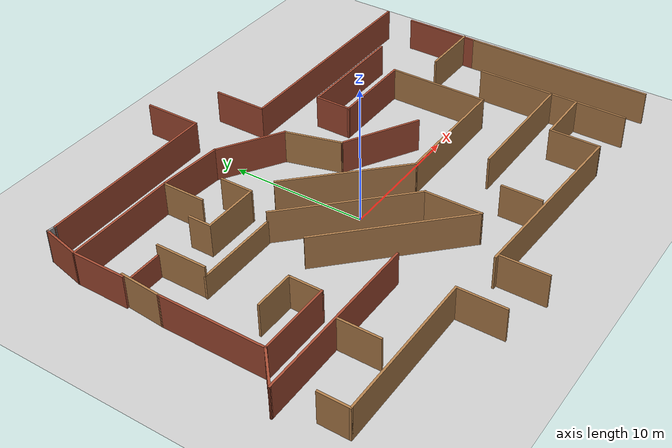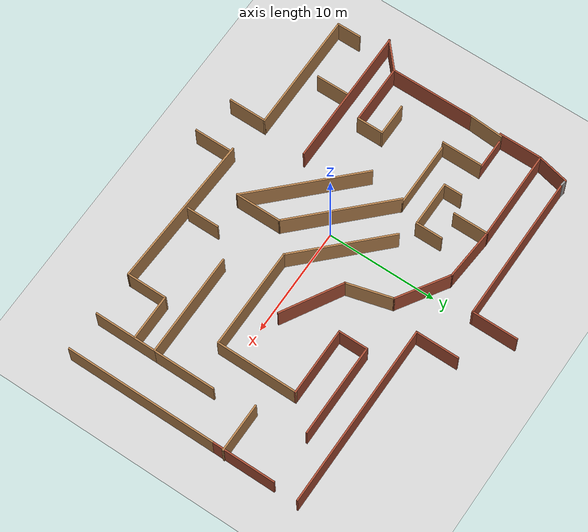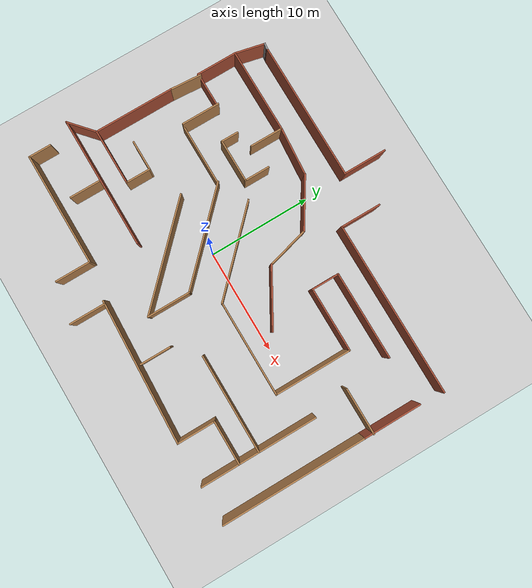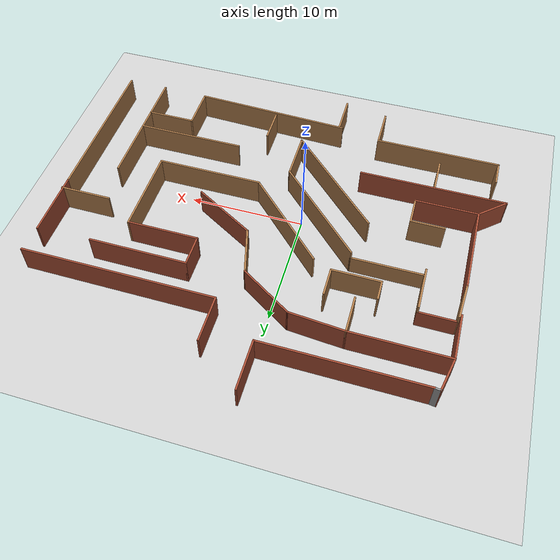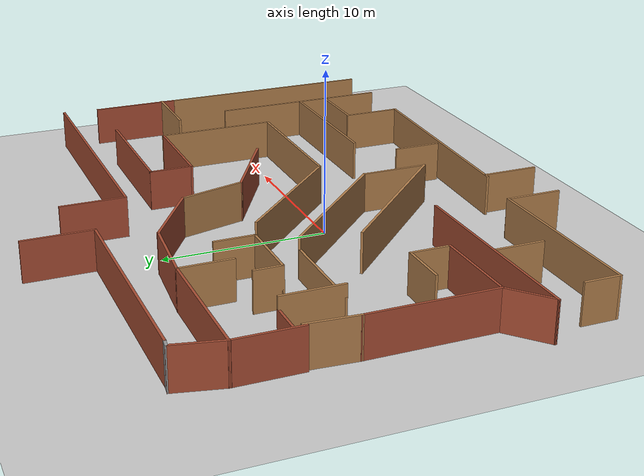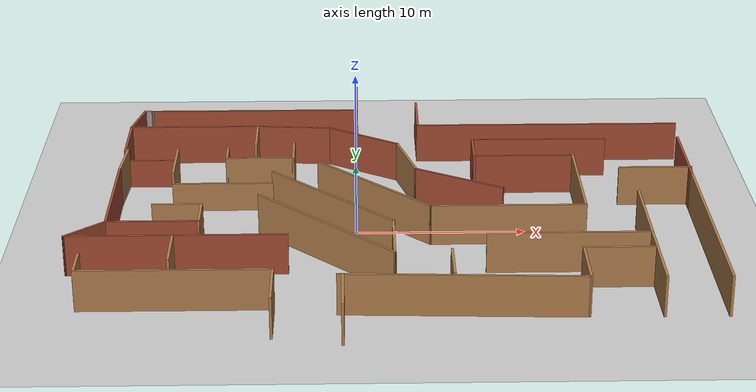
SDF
<?xml version="1.0" ?>
<sdf version="1.5">
  <!-- We use a custom world for the robot so that the camera angle is launched correctly -->
  <world name="diff_drive_world">

    <!-- Add a ground plane -->
    <include>
        <uri>model://ground_plane</uri>
        <material>
            <script>
                <uri>file://media/materials/scripts/gazebo.material</uri>
            </script>
        </material>
    </include>

    <!-- Global light source -->
    <include>
      <uri>model://sun</uri>
    </include>

    <include>
      <uri>model://Labyrinth2</uri>
      <pose>2 2 0 0 0 0</pose>
    </include>

    <!-- Human -->

    <!-- Set up the solver used for simulation -->
    <physics name="ode_70iters" type="ode">
      <real_time_update_rate>1500</real_time_update_rate>
      <ode>
        <solver>
          <type>quick</type>
          <iters>70</iters>
        </solver>
      </ode>
    </physics>

  </world>
</sdf>

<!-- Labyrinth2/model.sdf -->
<sdf version='1.7'>
  <model name='Labyrinth2'>
    <pose>14.88 -6.67463 0 0 -0 0</pose>
    <link name='Wall_0'>
      <collision name='Wall_0_Collision'>
        <geometry>
          <box>
            <size>3.25 0.15 2.5</size>
          </box>
        </geometry>
        <pose>0 0 0.5 0 -0 0</pose>
      </collision>
      <visual name='Wall_0_Visual'>
        <pose>0 0 0.5 0 -0 0</pose>
        <geometry>
          <box>
            <size>3.25 0.15 2.5</size>
          </box>
        </geometry>
        <material>
          <script>
            <uri>file://media/materials/scripts/gazebo.material</uri>
            <name>Gazebo/Bricks</name>
          </script>
          <ambient>1 1 1 1</ambient>
        </material>
        <meta>
          <layer>0</layer>
        </meta>
      </visual>
      <pose>-14.6765 5.20769 0 0 -0 0</pose>
    </link>
    <link name='Wall_100'>
      <collision name='Wall_100_Collision'>
        <geometry>
          <box>
            <size>8.25 0.15 2.5</size>
          </box>
        </geometry>
        <pose>0 0 1.25 0 -0 0</pose>
      </collision>
      <visual name='Wall_100_Visual'>
        <pose>0 0 1.25 0 -0 0</pose>
        <geometry>
          <box>
            <size>8.25 0.15 2.5</size>
          </box>
        </geometry>
        <material>
          <script>
            <uri>file://media/materials/scripts/gazebo.material</uri>
            <name>Gazebo/Bricks</name>
          </script>
          <ambient>1 1 1 1</ambient>
        </material>
        <meta>
          <layer>0</layer>
        </meta>
      </visual>
      <pose>-12.337 8.90344 0 0 -0 0</pose>
    </link>
    <link name='Wall_102'>
      <collision name='Wall_102_Collision'>
        <geometry>
          <box>
            <size>4.79271 0.15 2.5</size>
          </box>
        </geometry>
        <pose>0 0 1.25 0 -0 0</pose>
      </collision>
      <visual name='Wall_102_Visual'>
        <pose>0 0 1.25 0 -0 0</pose>
        <geometry>
          <box>
            <size>4.79271 0.15 2.5</size>
          </box>
        </geometry>
        <material>
          <script>
            <uri>file://media/materials/scripts/gazebo.material</uri>
            <name>Gazebo/Bricks</name>
          </script>
          <ambient>1 1 1 1</ambient>
        </material>
        <meta>
          <layer>0</layer>
        </meta>
      </visual>
      <pose>-5.97284 8.72026 0 0 -0 3.0626</pose>
    </link>
    <link name='Wall_104'>
      <collision name='Wall_104_Collision'>
        <geometry>
          <box>
            <size>4.25 0.15 2.5</size>
          </box>
        </geometry>
        <pose>0 0 1.25 0 -0 0</pose>
      </collision>
      <visual name='Wall_104_Visual'>
        <pose>0 0 1.25 0 -0 0</pose>
        <geometry>
          <box>
            <size>4.25 0.15 2.5</size>
          </box>
        </geometry>
        <material>
          <script>
            <uri>file://media/materials/scripts/gazebo.material</uri>
            <name>Gazebo/Bricks</name>
          </script>
          <ambient>1 1 1 1</ambient>
        </material>
        <meta>
          <layer>0</layer>
        </meta>
      </visual>
      <pose>-1.92948 13.6614 0 0 -0 -1.5708</pose>
    </link>
    <link name='Wall_105'>
      <collision name='Wall_105_Collision'>
        <geometry>
          <box>
            <size>13.5 0.15 2.5</size>
          </box>
        </geometry>
        <pose>0 0 1.25 0 -0 0</pose>
      </collision>
      <visual name='Wall_105_Visual'>
        <pose>0 0 1.25 0 -0 0</pose>
        <geometry>
          <box>
            <size>13.5 0.15 2.5</size>
          </box>
        </geometry>
        <material>
          <script>
            <uri>file://media/materials/scripts/gazebo.material</uri>
            <name>Gazebo/Bricks</name>
          </script>
          <ambient>1 1 1 1</ambient>
        </material>
        <meta>
          <layer>0</layer>
        </meta>
      </visual>
      <pose>-8.60448 11.6114 0 0 -0 3.14159</pose>
    </link>
    <link name='Wall_107'>
      <collision name='Wall_107_Collision'>
        <geometry>
          <box>
            <size>11 0.15 2.5</size>
          </box>
        </geometry>
        <pose>0 0 1.25 0 -0 0</pose>
      </collision>
      <visual name='Wall_107_Visual'>
        <pose>0 0 1.25 0 -0 0</pose>
        <geometry>
          <box>
            <size>11 0.15 2.5</size>
          </box>
        </geometry>
        <material>
          <script>
            <uri>file://media/materials/scripts/gazebo.material</uri>
            <name>Gazebo/Wood</name>
          </script>
          <ambient>1 1 1 1</ambient>
        </material>
        <meta>
          <layer>0</layer>
        </meta>
      </visual>
      <pose>-12.0381 -11.6128 0 0 -0 0</pose>
    </link>
    <link name='Wall_108'>
      <collision name='Wall_108_Collision'>
        <geometry>
          <box>
            <size>3.5 0.15 2.5</size>
          </box>
        </geometry>
        <pose>0 0 1.25 0 -0 0</pose>
      </collision>
      <visual name='Wall_108_Visual'>
        <pose>0 0 1.25 0 -0 0</pose>
        <geometry>
          <box>
            <size>3.5 0.15 2.5</size>
          </box>
        </geometry>
        <material>
          <script>
            <uri>file://media/materials/scripts/gazebo.material</uri>
            <name>Gazebo/Wood</name>
          </script>
          <ambient>1 1 1 1</ambient>
        </material>
        <meta>
          <layer>0</layer>
        </meta>
      </visual>
      <pose>-6.61313 -13.2878 0 0 -0 -1.5708</pose>
    </link>
    <link name='Wall_110'>
      <collision name='Wall_110_Collision'>
        <geometry>
          <box>
            <size>3.5 0.15 2.5</size>
          </box>
        </geometry>
        <pose>0 0 1.25 0 -0 0</pose>
      </collision>
      <visual name='Wall_110_Visual'>
        <pose>0 0 1.25 0 -0 0</pose>
        <geometry>
          <box>
            <size>3.5 0.15 2.5</size>
          </box>
        </geometry>
        <material>
          <script>
            <uri>file://media/materials/scripts/gazebo.material</uri>
            <name>Gazebo/Wood</name>
          </script>
          <ambient>1 1 1 1</ambient>
        </material>
        <meta>
          <layer>0</layer>
        </meta>
      </visual>
      <pose>-2.77167 -14.0364 0 0 -0 -1.5708</pose>
    </link>
    <link name='Wall_115'>
      <collision name='Wall_115_Collision'>
        <geometry>
          <box>
            <size>13.8885 0.15 2.5</size>
          </box>
        </geometry>
        <pose>0 0 1.25 0 -0 0</pose>
      </collision>
      <visual name='Wall_115_Visual'>
        <pose>0 0 1.25 0 -0 0</pose>
        <geometry>
          <box>
            <size>13.8885 0.15 2.5</size>
          </box>
        </geometry>
        <material>
          <script>
            <uri>file://media/materials/scripts/gazebo.material</uri>
            <name>Gazebo/Wood</name>
          </script>
          <ambient>1 1 1 1</ambient>
        </material>
        <meta>
          <layer>0</layer>
        </meta>
      </visual>
      <pose>3.81966 -12.5515 0 0 -0 -0.039063</pose>
    </link>
    <link name='Wall_117'>
      <collision name='Wall_117_Collision'>
        <geometry>
          <box>
            <size>5.75 0.15 2.5</size>
          </box>
        </geometry>
        <pose>0 0 1.25 0 -0 0</pose>
      </collision>
      <visual name='Wall_117_Visual'>
        <pose>0 0 1.25 0 -0 0</pose>
        <geometry>
          <box>
            <size>5.75 0.15 2.5</size>
          </box>
        </geometry>
        <material>
          <script>
            <uri>file://media/materials/scripts/gazebo.material</uri>
            <name>Gazebo/Wood</name>
          </script>
          <ambient>1 1 1 1</ambient>
        </material>
        <meta>
          <layer>0</layer>
        </meta>
      </visual>
      <pose>14.801 -10.0842 0 0 -0 -1.5708</pose>
    </link>
    <link name='Wall_119'>
      <collision name='Wall_119_Collision'>
        <geometry>
          <box>
            <size>4.25 0.15 2.5</size>
          </box>
        </geometry>
        <pose>0 0 1.25 0 -0 0</pose>
      </collision>
      <visual name='Wall_119_Visual'>
        <pose>0 0 1.25 0 -0 0</pose>
        <geometry>
          <box>
            <size>4.25 0.15 2.5</size>
          </box>
        </geometry>
        <material>
          <script>
            <uri>file://media/materials/scripts/gazebo.material</uri>
            <name>Gazebo/Wood</name>
          </script>
          <ambient>1 1 1 1</ambient>
        </material>
        <meta>
          <layer>0</layer>
        </meta>
      </visual>
      <pose>12.7337 -9.21982 0 0 -0 0</pose>
    </link>
    <link name='Wall_121'>
      <collision name='Wall_121_Collision'>
        <geometry>
          <box>
            <size>2.98653 0.15 2.5</size>
          </box>
        </geometry>
        <pose>0 0 1.25 0 -0 0</pose>
      </collision>
      <visual name='Wall_121_Visual'>
        <pose>0 0 1.25 0 -0 0</pose>
        <geometry>
          <box>
            <size>2.98653 0.15 2.5</size>
          </box>
        </geometry>
        <material>
          <script>
            <uri>file://media/materials/scripts/gazebo.material</uri>
            <name>Gazebo/Bricks</name>
          </script>
          <ambient>1 1 1 1</ambient>
        </material>
        <meta>
          <layer>0</layer>
        </meta>
      </visual>
      <pose>-16.0788 10.2878 0 0 -0 -1.78979</pose>
    </link>
    <link name='Wall_123'>
      <collision name='Wall_123_Collision'>
        <geometry>
          <box>
            <size>0.644994 0.15 2.5</size>
          </box>
        </geometry>
        <pose>0 0 1.25 0 -0 0</pose>
      </collision>
      <visual name='Wall_123_Visual'>
        <pose>0 0 1.25 0 -0 0</pose>
        <geometry>
          <box>
            <size>0.644994 0.15 2.5</size>
          </box>
        </geometry>
        <material>
          <script>
            <uri>file://media/materials/scripts/gazebo.material</uri>
            <name>Gazebo/Grey</name>
          </script>
          <ambient>1 1 1 1</ambient>
        </material>
        <meta>
          <layer>0</layer>
        </meta>
      </visual>
      <pose>-15.5251 11.6418 0 0 -0 3.01846</pose>
    </link>
    <link name='Wall_126'>
      <collision name='Wall_126_Collision'>
        <geometry>
          <box>
            <size>2.25 0.15 2.5</size>
          </box>
        </geometry>
        <pose>0 0 1.25 0 -0 0</pose>
      </collision>
      <visual name='Wall_126_Visual'>
        <pose>0 0 1.25 0 -0 0</pose>
        <geometry>
          <box>
            <size>2.25 0.15 2.5</size>
          </box>
        </geometry>
        <material>
          <script>
            <uri>file://media/materials/scripts/gazebo.material</uri>
            <name>Gazebo/Wood</name>
          </script>
          <ambient>1 1 1 1</ambient>
        </material>
        <meta>
          <layer>0</layer>
        </meta>
      </visual>
      <pose>-17.4631 -10.5628 0 0 -0 1.5708</pose>
    </link>
    <link name='Wall_128'>
      <collision name='Wall_128_Collision'>
        <geometry>
          <box>
            <size>2.99043 0.15 2.5</size>
          </box>
        </geometry>
        <pose>0 0 1.25 0 -0 0</pose>
      </collision>
      <visual name='Wall_128_Visual'>
        <pose>0 0 1.25 0 -0 0</pose>
        <geometry>
          <box>
            <size>2.99043 0.15 2.5</size>
          </box>
        </geometry>
        <material>
          <script>
            <uri>file://media/materials/scripts/gazebo.material</uri>
            <name>Gazebo/Bricks</name>
          </script>
          <ambient>1 1 1 1</ambient>
        </material>
        <meta>
          <layer>0</layer>
        </meta>
      </visual>
      <pose>-17.4925 -6.30103 0 0 -0 -2.4176</pose>
    </link>
    <link name='Wall_130'>
      <collision name='Wall_130_Collision'>
        <geometry>
          <box>
            <size>4 0.15 2.5</size>
          </box>
        </geometry>
        <pose>0 0 1.25 0 -0 0</pose>
      </collision>
      <visual name='Wall_130_Visual'>
        <pose>0 0 1.25 0 -0 0</pose>
        <geometry>
          <box>
            <size>4 0.15 2.5</size>
          </box>
        </geometry>
        <material>
          <script>
            <uri>file://media/materials/scripts/gazebo.material</uri>
            <name>Gazebo/Bricks</name>
          </script>
          <ambient>1 1 1 1</ambient>
        </material>
        <meta>
          <layer>0</layer>
        </meta>
      </visual>
      <pose>-16.387 6.97844 0 0 -0 -1.5708</pose>
    </link>
    <link name='Wall_132'>
      <collision name='Wall_132_Collision'>
        <geometry>
          <box>
            <size>4.5 0.15 2.5</size>
          </box>
        </geometry>
        <pose>0 0 1.25 0 -0 0</pose>
      </collision>
      <visual name='Wall_132_Visual'>
        <pose>0 0 1.25 0 -0 0</pose>
        <geometry>
          <box>
            <size>4.5 0.15 2.5</size>
          </box>
        </geometry>
        <material>
          <script>
            <uri>file://media/materials/scripts/gazebo.material</uri>
            <name>Gazebo/Wood</name>
          </script>
          <ambient>1 1 1 1</ambient>
        </material>
        <meta>
          <layer>0</layer>
        </meta>
      </visual>
      <pose>16.3087 1.8733 0 0 -0 3.14159</pose>
    </link>
    <link name='Wall_135'>
      <collision name='Wall_135_Collision'>
        <geometry>
          <box>
            <size>3.25 0.15 2.5</size>
          </box>
        </geometry>
        <pose>0 0 1.25 0 -0 0</pose>
      </collision>
      <visual name='Wall_135_Visual'>
        <pose>0 0 1.25 0 -0 0</pose>
        <geometry>
          <box>
            <size>3.25 0.15 2.5</size>
          </box>
        </geometry>
        <material>
          <script>
            <uri>file://media/materials/scripts/gazebo.material</uri>
            <name>Gazebo/Wood</name>
          </script>
          <ambient>1 1 1 1</ambient>
        </material>
        <meta>
          <layer>0</layer>
        </meta>
      </visual>
      <pose>-8.28696 7.35344 0 0 -0 -1.5708</pose>
    </link>
    <link name='Wall_137'>
      <collision name='Wall_137_Collision'>
        <geometry>
          <box>
            <size>3 0.15 2.5</size>
          </box>
        </geometry>
        <pose>0 0 1.25 0 -0 0</pose>
      </collision>
      <visual name='Wall_137_Visual'>
        <pose>0 0 1.25 0 -0 0</pose>
        <geometry>
          <box>
            <size>3 0.15 2.5</size>
          </box>
        </geometry>
        <material>
          <script>
            <uri>file://media/materials/scripts/gazebo.material</uri>
            <name>Gazebo/Wood</name>
          </script>
          <ambient>1 1 1 1</ambient>
        </material>
        <meta>
          <layer>0</layer>
        </meta>
      </visual>
      <pose>3.32146 -10.7794 0 0 -0 1.5708</pose>
    </link>
    <link name='Wall_33'>
      <collision name='Wall_33_Collision'>
        <geometry>
          <box>
            <size>3.75 0.15 2.5</size>
          </box>
        </geometry>
        <pose>0 0 1.25 0 -0 0</pose>
      </collision>
      <visual name='Wall_33_Visual'>
        <pose>0 0 1.25 0 -0 0</pose>
        <geometry>
          <box>
            <size>3.75 0.15 2.5</size>
          </box>
        </geometry>
        <material>
          <script>
            <uri>file://media/materials/scripts/gazebo.material</uri>
            <name>Gazebo/Wood</name>
          </script>
          <ambient>1 1 1 1</ambient>
        </material>
        <meta>
          <layer>0</layer>
        </meta>
      </visual>
      <pose>-13.1267 3.40766 0 0 -0 -1.57093</pose>
    </link>
    <link name='Wall_34'>
      <collision name='Wall_34_Collision'>
        <geometry>
          <box>
            <size>6.25 0.15 2.5</size>
          </box>
        </geometry>
        <pose>0 0 0.5 0 -0 0</pose>
      </collision>
      <visual name='Wall_34_Visual'>
        <pose>0 0 0.5 0 -0 0</pose>
        <geometry>
          <box>
            <size>6.25 0.15 2.5</size>
          </box>
        </geometry>
        <material>
          <script>
            <uri>file://media/materials/scripts/gazebo.material</uri>
            <name>Gazebo/Wood</name>
          </script>
          <ambient>1 1 1 1</ambient>
        </material>
        <meta>
          <layer>0</layer>
        </meta>
      </visual>
      <pose>-10.077 1.60763 0 0 -0 0</pose>
    </link>
    <link name='Wall_35'>
      <collision name='Wall_35_Collision'>
        <geometry>
          <box>
            <size>10.25 0.15 2.5</size>
          </box>
        </geometry>
        <pose>0 0 1.25 0 -0 0</pose>
      </collision>
      <visual name='Wall_35_Visual'>
        <pose>0 0 1.25 0 -0 0</pose>
        <geometry>
          <box>
            <size>10.25 0.15 2.5</size>
          </box>
        </geometry>
        <material>
          <script>
            <uri>file://media/materials/scripts/gazebo.material</uri>
            <name>Gazebo/Wood</name>
          </script>
          <ambient>1 1 1 1</ambient>
        </material>
        <meta>
          <layer>0</layer>
        </meta>
      </visual>
      <pose>-3.45586 -1.96323 0 0 -0 -0.785361</pose>
    </link>
    <link name='Wall_49'>
      <collision name='Wall_49_Collision'>
        <geometry>
          <box>
            <size>1.75 0.15 2.5</size>
          </box>
        </geometry>
        <pose>0 0 1.25 0 -0 0</pose>
      </collision>
      <visual name='Wall_49_Visual'>
        <pose>0 0 1.25 0 -0 0</pose>
        <geometry>
          <box>
            <size>1.75 0.15 2.5</size>
          </box>
        </geometry>
        <material>
          <script>
            <uri>file://media/materials/scripts/gazebo.material</uri>
            <name>Gazebo/Wood</name>
          </script>
          <ambient>1 1 1 1</ambient>
        </material>
        <meta>
          <layer>0</layer>
        </meta>
      </visual>
      <pose>-9.98534 4.55028 0 0 -0 -1.5708</pose>
    </link>
    <link name='Wall_50'>
      <collision name='Wall_50_Collision'>
        <geometry>
          <box>
            <size>4.25 0.15 2.5</size>
          </box>
        </geometry>
        <pose>0 0 1.25 0 -0 0</pose>
      </collision>
      <visual name='Wall_50_Visual'>
        <pose>0 0 1.25 0 -0 0</pose>
        <geometry>
          <box>
            <size>4.25 0.15 2.5</size>
          </box>
        </geometry>
        <material>
          <script>
            <uri>file://media/materials/scripts/gazebo.material</uri>
            <name>Gazebo/Wood</name>
          </script>
          <ambient>1 1 1 1</ambient>
        </material>
        <meta>
          <layer>0</layer>
        </meta>
      </visual>
      <pose>-7.93534 3.75028 0 0 -0 0</pose>
    </link>
    <link name='Wall_51'>
      <collision name='Wall_51_Collision'>
        <geometry>
          <box>
            <size>2.5 0.15 2.5</size>
          </box>
        </geometry>
        <pose>0 0 1.25 0 -0 0</pose>
      </collision>
      <visual name='Wall_51_Visual'>
        <pose>0 0 1.25 0 -0 0</pose>
        <geometry>
          <box>
            <size>2.5 0.15 2.5</size>
          </box>
        </geometry>
        <material>
          <script>
            <uri>file://media/materials/scripts/gazebo.material</uri>
            <name>Gazebo/Wood</name>
          </script>
          <ambient>1 1 1 1</ambient>
        </material>
        <meta>
          <layer>0</layer>
        </meta>
      </visual>
      <pose>-5.88534 4.92528 0 0 -0 1.5708</pose>
    </link>
    <link name='Wall_53'>
      <collision name='Wall_53_Collision'>
        <geometry>
          <box>
            <size>9.5 0.15 2.5</size>
          </box>
        </geometry>
        <pose>0 0 1.25 0 -0 0</pose>
      </collision>
      <visual name='Wall_53_Visual'>
        <pose>0 0 1.25 0 -0 0</pose>
        <geometry>
          <box>
            <size>9.5 0.15 2.5</size>
          </box>
        </geometry>
        <material>
          <script>
            <uri>file://media/materials/scripts/gazebo.material</uri>
            <name>Gazebo/Wood</name>
          </script>
          <ambient>1 1 1 1</ambient>
        </material>
        <meta>
          <layer>0</layer>
        </meta>
      </visual>
      <pose>-0.957524 -0.231975 0 0 -0 -0.785398</pose>
    </link>
    <link name='Wall_54'>
      <collision name='Wall_54_Collision'>
        <geometry>
          <box>
            <size>9.25 0.15 2.5</size>
          </box>
        </geometry>
        <pose>0 0 1.25 0 -0 0</pose>
      </collision>
      <visual name='Wall_54_Visual'>
        <pose>0 0 1.25 0 -0 0</pose>
        <geometry>
          <box>
            <size>9.25 0.15 2.5</size>
          </box>
        </geometry>
        <material>
          <script>
            <uri>file://media/materials/scripts/gazebo.material</uri>
            <name>Gazebo/Wood</name>
          </script>
          <ambient>1 1 1 1</ambient>
        </material>
        <meta>
          <layer>0</layer>
        </meta>
      </visual>
      <pose>6.8982 -3.5377 0 0 -0 0</pose>
    </link>
    <link name='Wall_55'>
      <collision name='Wall_55_Collision'>
        <geometry>
          <box>
            <size>7.5 0.15 2.5</size>
          </box>
        </geometry>
        <pose>0 0 1.25 0 -0 0</pose>
      </collision>
      <visual name='Wall_55_Visual'>
        <pose>0 0 1.25 0 -0 0</pose>
        <geometry>
          <box>
            <size>7.5 0.15 2.5</size>
          </box>
        </geometry>
        <material>
          <script>
            <uri>file://media/materials/scripts/gazebo.material</uri>
            <name>Gazebo/Wood</name>
          </script>
          <ambient>1 1 1 1</ambient>
        </material>
        <meta>
          <layer>0</layer>
        </meta>
      </visual>
      <pose>11.4482 0.137301 0 0 -0 1.5708</pose>
    </link>
    <link name='Wall_56'>
      <collision name='Wall_56_Collision'>
        <geometry>
          <box>
            <size>6.25 0.15 2.5</size>
          </box>
        </geometry>
        <pose>0 0 1.25 0 -0 0</pose>
      </collision>
      <visual name='Wall_56_Visual'>
        <pose>0 0 1.25 0 -0 0</pose>
        <geometry>
          <box>
            <size>6.25 0.15 2.5</size>
          </box>
        </geometry>
        <material>
          <script>
            <uri>file://media/materials/scripts/gazebo.material</uri>
            <name>Gazebo/Bricks</name>
          </script>
          <ambient>1 1 1 1</ambient>
        </material>
        <meta>
          <layer>0</layer>
        </meta>
      </visual>
      <pose>8.3982 3.8123 0 0 -0 3.14159</pose>
    </link>
    <link name='Wall_57'>
      <collision name='Wall_57_Collision'>
        <geometry>
          <box>
            <size>2.75 0.15 2.5</size>
          </box>
        </geometry>
        <pose>0 0 1.25 0 -0 0</pose>
      </collision>
      <visual name='Wall_57_Visual'>
        <pose>0 0 1.25 0 -0 0</pose>
        <geometry>
          <box>
            <size>2.75 0.15 2.5</size>
          </box>
        </geometry>
        <material>
          <script>
            <uri>file://media/materials/scripts/gazebo.material</uri>
            <name>Gazebo/Bricks</name>
          </script>
          <ambient>1 1 1 1</ambient>
        </material>
        <meta>
          <layer>0</layer>
        </meta>
      </visual>
      <pose>5.3482 5.1123 0 0 -0 1.5708</pose>
    </link>
    <link name='Wall_60'>
      <collision name='Wall_60_Collision'>
        <geometry>
          <box>
            <size>4.25 0.15 2.5</size>
          </box>
        </geometry>
        <pose>0 0 1.25 0 -0 0</pose>
      </collision>
      <visual name='Wall_60_Visual'>
        <pose>0 0 1.25 0 -0 0</pose>
        <geometry>
          <box>
            <size>4.25 0.15 2.5</size>
          </box>
        </geometry>
        <material>
          <script>
            <uri>file://media/materials/scripts/gazebo.material</uri>
            <name>Gazebo/Wood</name>
          </script>
          <ambient>1 1 1 1</ambient>
        </material>
        <meta>
          <layer>0</layer>
        </meta>
      </visual>
      <pose>1.12803 3.86236 0 0 -0 -1.309</pose>
    </link>
    <link name='Wall_61'>
      <collision name='Wall_61_Collision'>
        <geometry>
          <box>
            <size>6 0.15 2.5</size>
          </box>
        </geometry>
        <pose>0 0 1.25 0 -0 0</pose>
      </collision>
      <visual name='Wall_61_Visual'>
        <pose>0 0 1.25 0 -0 0</pose>
        <geometry>
          <box>
            <size>6 0.15 2.5</size>
          </box>
        </geometry>
        <material>
          <script>
            <uri>file://media/materials/scripts/gazebo.material</uri>
            <name>Gazebo/Bricks</name>
          </script>
          <ambient>1 1 1 1</ambient>
        </material>
        <meta>
          <layer>0</layer>
        </meta>
      </visual>
      <pose>4.19174 0.419708 0 0 -0 -0.523599</pose>
    </link>
    <link name='Wall_63'>
      <collision name='Wall_63_Collision'>
        <geometry>
          <box>
            <size>4.25 0.15 2.5</size>
          </box>
        </geometry>
        <pose>0 0 1.25 0 -0 0</pose>
      </collision>
      <visual name='Wall_63_Visual'>
        <pose>0 0 1.25 0 -0 0</pose>
        <geometry>
          <box>
            <size>4.25 0.15 2.5</size>
          </box>
        </geometry>
        <material>
          <script>
            <uri>file://media/materials/scripts/gazebo.material</uri>
            <name>Gazebo/Wood</name>
          </script>
          <ambient>1 1 1 1</ambient>
        </material>
        <meta>
          <layer>0</layer>
        </meta>
      </visual>
      <pose>0.115266 -7.58409 0 0 -0 -1.5708</pose>
    </link>
    <link name='Wall_64'>
      <collision name='Wall_64_Collision'>
        <geometry>
          <box>
            <size>11.25 0.15 2.5</size>
          </box>
        </geometry>
        <pose>0 0 1.25 0 -0 0</pose>
      </collision>
      <visual name='Wall_64_Visual'>
        <pose>0 0 1.25 0 -0 0</pose>
        <geometry>
          <box>
            <size>11.25 0.15 2.5</size>
          </box>
        </geometry>
        <material>
          <script>
            <uri>file://media/materials/scripts/gazebo.material</uri>
            <name>Gazebo/Wood</name>
          </script>
          <ambient>1 1 1 1</ambient>
        </material>
        <meta>
          <layer>0</layer>
        </meta>
      </visual>
      <pose>-3.80918 -5.70965 0 0 -0 2.35619</pose>
    </link>
    <link name='Wall_66'>
      <collision name='Wall_66_Collision'>
        <geometry>
          <box>
            <size>7.75 0.15 2.5</size>
          </box>
        </geometry>
        <pose>0 0 1.25 0 -0 0</pose>
      </collision>
      <visual name='Wall_66_Visual'>
        <pose>0 0 1.25 0 -0 0</pose>
        <geometry>
          <box>
            <size>7.75 0.15 2.5</size>
          </box>
        </geometry>
        <material>
          <script>
            <uri>file://media/materials/scripts/gazebo.material</uri>
            <name>Gazebo/Bricks</name>
          </script>
          <ambient>1 1 1 1</ambient>
        </material>
        <meta>
          <layer>0</layer>
        </meta>
      </visual>
      <pose>-16.4286 -1.56031 0 0 -0 -1.5708</pose>
    </link>
    <link name='Wall_67'>
      <collision name='Wall_67_Collision'>
        <geometry>
          <box>
            <size>5.5 0.15 2.5</size>
          </box>
        </geometry>
        <pose>0 0 1.25 0 -0 0</pose>
      </collision>
      <visual name='Wall_67_Visual'>
        <pose>0 0 1.25 0 -0 0</pose>
        <geometry>
          <box>
            <size>5.5 0.15 2.5</size>
          </box>
        </geometry>
        <material>
          <script>
            <uri>file://media/materials/scripts/gazebo.material</uri>
            <name>Gazebo/Bricks</name>
          </script>
          <ambient>1 1 1 1</ambient>
        </material>
        <meta>
          <layer>0</layer>
        </meta>
      </visual>
      <pose>-13.7536 -5.36031 0 0 -0 0</pose>
    </link>
    <link name='Wall_68'>
      <collision name='Wall_68_Collision'>
        <geometry>
          <box>
            <size>2.5 0.15 2.5</size>
          </box>
        </geometry>
        <pose>0 0 1.25 0 -0 0</pose>
      </collision>
      <visual name='Wall_68_Visual'>
        <pose>0 0 1.25 0 -0 0</pose>
        <geometry>
          <box>
            <size>2.5 0.15 2.5</size>
          </box>
        </geometry>
        <material>
          <script>
            <uri>file://media/materials/scripts/gazebo.material</uri>
            <name>Gazebo/Wood</name>
          </script>
          <ambient>1 1 1 1</ambient>
        </material>
        <meta>
          <layer>0</layer>
        </meta>
      </visual>
      <pose>-11.0786 -4.18531 0 0 -0 1.5708</pose>
    </link>
    <link name='Wall_69'>
      <collision name='Wall_69_Collision'>
        <geometry>
          <box>
            <size>3 0.15 2.5</size>
          </box>
        </geometry>
        <pose>0 0 1.25 0 -0 0</pose>
      </collision>
      <visual name='Wall_69_Visual'>
        <pose>0 0 1.25 0 -0 0</pose>
        <geometry>
          <box>
            <size>3 0.15 2.5</size>
          </box>
        </geometry>
        <material>
          <script>
            <uri>file://media/materials/scripts/gazebo.material</uri>
            <name>Gazebo/Wood</name>
          </script>
          <ambient>1 1 1 1</ambient>
        </material>
        <meta>
          <layer>0</layer>
        </meta>
      </visual>
      <pose>-12.5036 -3.0103 0 0 -0 3.14159</pose>
    </link>
    <link name='Wall_71'>
      <collision name='Wall_71_Collision'>
        <geometry>
          <box>
            <size>12.75 0.15 2.5</size>
          </box>
        </geometry>
        <pose>0 0 1.25 0 -0 0</pose>
      </collision>
      <visual name='Wall_71_Visual'>
        <pose>0 0 1.25 0 -0 0</pose>
        <geometry>
          <box>
            <size>12.75 0.15 2.5</size>
          </box>
        </geometry>
        <material>
          <script>
            <uri>file://media/materials/scripts/gazebo.material</uri>
            <name>Gazebo/Bricks</name>
          </script>
          <ambient>1 1 1 1</ambient>
        </material>
        <meta>
          <layer>0</layer>
        </meta>
      </visual>
      <pose>-12.2565 -7.24175 0 0 -0 3.14159</pose>
    </link>
    <link name='Wall_76'>
      <collision name='Wall_76_Collision'>
        <geometry>
          <box>
            <size>14 0.15 2.5</size>
          </box>
        </geometry>
        <pose>0 0 1.25 0 -0 0</pose>
      </collision>
      <visual name='Wall_76_Visual'>
        <pose>0 0 1.25 0 -0 0</pose>
        <geometry>
          <box>
            <size>14 0.15 2.5</size>
          </box>
        </geometry>
        <material>
          <script>
            <uri>file://media/materials/scripts/gazebo.material</uri>
            <name>Gazebo/Wood</name>
          </script>
          <ambient>1 1 1 1</ambient>
        </material>
        <meta>
          <layer>0</layer>
        </meta>
      </visual>
      <pose>18.3994 -5.98839 0 0 -0 1.5708</pose>
    </link>
    <link name='Wall_78'>
      <collision name='Wall_78_Collision'>
        <geometry>
          <box>
            <size>5.75 0.15 2.5</size>
          </box>
        </geometry>
        <pose>0 0 1.25 0 -0 0</pose>
      </collision>
      <visual name='Wall_78_Visual'>
        <pose>0 0 1.25 0 -0 0</pose>
        <geometry>
          <box>
            <size>5.75 0.15 2.5</size>
          </box>
        </geometry>
        <material>
          <script>
            <uri>file://media/materials/scripts/gazebo.material</uri>
            <name>Gazebo/Wood</name>
          </script>
          <ambient>1 1 1 1</ambient>
        </material>
        <meta>
          <layer>0</layer>
        </meta>
      </visual>
      <pose>14.801 -4.48425 0 0 -0 -1.5708</pose>
    </link>
    <link name='Wall_79'>
      <collision name='Wall_79_Collision'>
        <geometry>
          <box>
            <size>9.5 0.15 2.5</size>
          </box>
        </geometry>
        <pose>0 0 1.25 0 -0 0</pose>
      </collision>
      <visual name='Wall_79_Visual'>
        <pose>0 0 1.25 0 -0 0</pose>
        <geometry>
          <box>
            <size>9.5 0.15 2.5</size>
          </box>
        </geometry>
        <material>
          <script>
            <uri>file://media/materials/scripts/gazebo.material</uri>
            <name>Gazebo/Wood</name>
          </script>
          <ambient>1 1 1 1</ambient>
        </material>
        <meta>
          <layer>0</layer>
        </meta>
      </visual>
      <pose>10.126 -7.28425 0 0 -0 3.14159</pose>
    </link>
    <link name='Wall_81'>
      <collision name='Wall_81_Collision'>
        <geometry>
          <box>
            <size>3 0.15 2.5</size>
          </box>
        </geometry>
        <pose>0 0 1.25 0 -0 0</pose>
      </collision>
      <visual name='Wall_81_Visual'>
        <pose>0 0 1.25 0 -0 0</pose>
        <geometry>
          <box>
            <size>3 0.15 2.5</size>
          </box>
        </geometry>
        <material>
          <script>
            <uri>file://media/materials/scripts/gazebo.material</uri>
            <name>Gazebo/Wood</name>
          </script>
          <ambient>1 1 1 1</ambient>
        </material>
        <meta>
          <layer>0</layer>
        </meta>
      </visual>
      <pose>-12.4296 -8.81739 0 0 -0 -1.5708</pose>
    </link>
    <link name='Wall_83'>
      <collision name='Wall_83_Collision'>
        <geometry>
          <box>
            <size>3.75 0.15 2.5</size>
          </box>
        </geometry>
        <pose>0 0 1.25 0 -0 0</pose>
      </collision>
      <visual name='Wall_83_Visual'>
        <pose>0 0 1.25 0 -0 0</pose>
        <geometry>
          <box>
            <size>3.75 0.15 2.5</size>
          </box>
        </geometry>
        <material>
          <script>
            <uri>file://media/materials/scripts/gazebo.material</uri>
            <name>Gazebo/Wood</name>
          </script>
          <ambient>1 1 1 1</ambient>
        </material>
        <meta>
          <layer>0</layer>
        </meta>
      </visual>
      <pose>10.6837 -11.0198 0 0 -0 1.5708</pose>
    </link>
    <link name='Wall_86'>
      <collision name='Wall_86_Collision'>
        <geometry>
          <box>
            <size>4 0.15 2.5</size>
          </box>
        </geometry>
        <pose>0 0 1.25 0 -0 0</pose>
      </collision>
      <visual name='Wall_86_Visual'>
        <pose>0 0 1.25 0 -0 0</pose>
        <geometry>
          <box>
            <size>4 0.15 2.5</size>
          </box>
        </geometry>
        <material>
          <script>
            <uri>file://media/materials/scripts/gazebo.material</uri>
            <name>Gazebo/Bricks</name>
          </script>
          <ambient>1 1 1 1</ambient>
        </material>
        <meta>
          <layer>0</layer>
        </meta>
      </visual>
      <pose>1.98739 10.8015 0 0 -0 -1.5708</pose>
    </link>
    <link name='Wall_87'>
      <collision name='Wall_87_Collision'>
        <geometry>
          <box>
            <size>16.75 0.15 2.5</size>
          </box>
        </geometry>
        <pose>0 0 1.25 0 -0 0</pose>
      </collision>
      <visual name='Wall_87_Visual'>
        <pose>0 0 1.25 0 -0 0</pose>
        <geometry>
          <box>
            <size>16.75 0.15 2.5</size>
          </box>
        </geometry>
        <material>
          <script>
            <uri>file://media/materials/scripts/gazebo.material</uri>
            <name>Gazebo/Bricks</name>
          </script>
          <ambient>1 1 1 1</ambient>
        </material>
        <meta>
          <layer>0</layer>
        </meta>
      </visual>
      <pose>10.2874 8.87649 0 0 -0 0</pose>
    </link>
    <link name='Wall_90'>
      <collision name='Wall_90_Collision'>
        <geometry>
          <box>
            <size>8.5 0.15 2.5</size>
          </box>
        </geometry>
        <pose>0 0 1.25 0 -0 0</pose>
      </collision>
      <visual name='Wall_90_Visual'>
        <pose>0 0 1.25 0 -0 0</pose>
        <geometry>
          <box>
            <size>8.5 0.15 2.5</size>
          </box>
        </geometry>
        <material>
          <script>
            <uri>file://media/materials/scripts/gazebo.material</uri>
            <name>Gazebo/Bricks</name>
          </script>
          <ambient>1 1 1 1</ambient>
        </material>
        <meta>
          <layer>0</layer>
        </meta>
      </visual>
      <pose>9.5232 6.4123 0 0 -0 0</pose>
    </link>
    <link name='Wall_92'>
      <collision name='Wall_92_Collision'>
        <geometry>
          <box>
            <size>5.75 0.15 2.5</size>
          </box>
        </geometry>
        <pose>0 0 1.25 0 -0 0</pose>
      </collision>
      <visual name='Wall_92_Visual'>
        <pose>0 0 1.25 0 -0 0</pose>
        <geometry>
          <box>
            <size>5.75 0.15 2.5</size>
          </box>
        </geometry>
        <material>
          <script>
            <uri>file://media/materials/scripts/gazebo.material</uri>
            <name>Gazebo/Bricks</name>
          </script>
          <ambient>1 1 1 1</ambient>
        </material>
        <meta>
          <layer>0</layer>
        </meta>
      </visual>
      <pose>18.3994 3.73661 0 0 -0 1.5708</pose>
    </link>
    <link name='Wall_94'>
      <collision name='Wall_94_Collision'>
        <geometry>
          <box>
            <size>5.18743 0.15 2.5</size>
          </box>
        </geometry>
        <pose>0 0 1.25 0 -0 0</pose>
      </collision>
      <visual name='Wall_94_Visual'>
        <pose>0 0 1.25 0 -0 0</pose>
        <geometry>
          <box>
            <size>5.18743 0.15 2.5</size>
          </box>
        </geometry>
        <material>
          <script>
            <uri>file://media/materials/scripts/gazebo.material</uri>
            <name>Gazebo/Bricks</name>
          </script>
          <ambient>1 1 1 1</ambient>
        </material>
        <meta>
          <layer>0</layer>
        </meta>
      </visual>
      <pose>-1.53064 7.18979 0 0 -0 -0.5644</pose>
    </link>
    <link name='Wall_97'>
      <collision name='Wall_97_Collision'>
        <geometry>
          <box>
            <size>3.12486 0.15 2.5</size>
          </box>
        </geometry>
        <pose>0 0 1.25 0 -0 0</pose>
      </collision>
      <visual name='Wall_97_Visual'>
        <pose>0 0 1.25 0 -0 0</pose>
        <geometry>
          <box>
            <size>3.12486 0.15 2.5</size>
          </box>
        </geometry>
        <material>
          <script>
            <uri>file://media/materials/scripts/gazebo.material</uri>
            <name>Gazebo/Wood</name>
          </script>
          <ambient>1 1 1 1</ambient>
        </material>
        <meta>
          <layer>0</layer>
        </meta>
      </visual>
      <pose>-16.3275 3.72369 0 0 -0 -1.63877</pose>
    </link>
    <static>1</static>
  </model>
</sdf>
